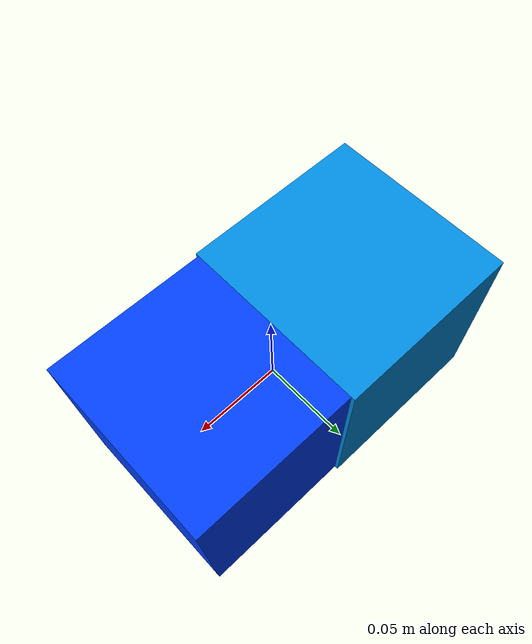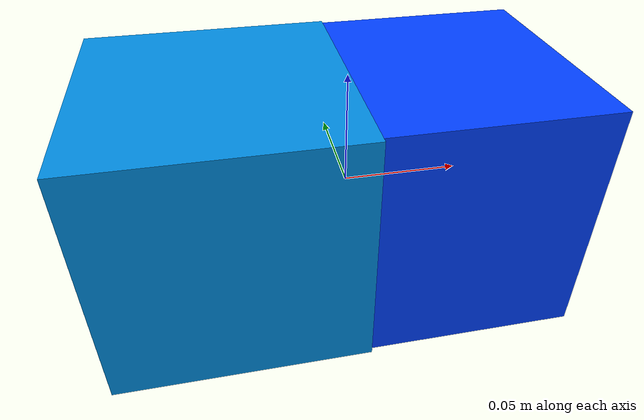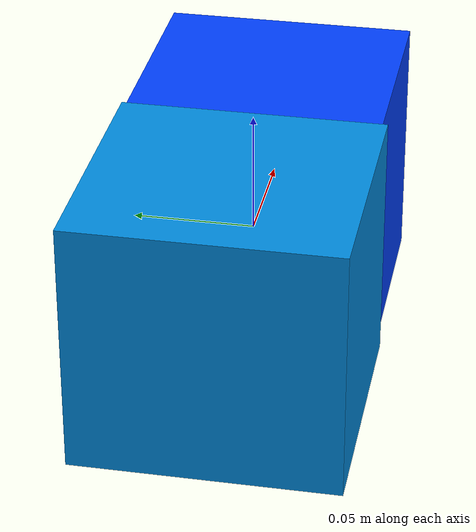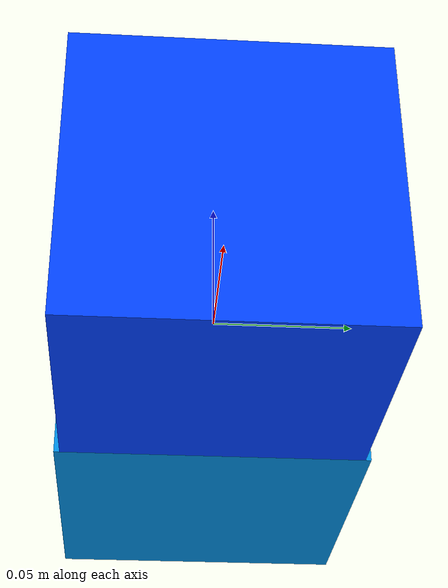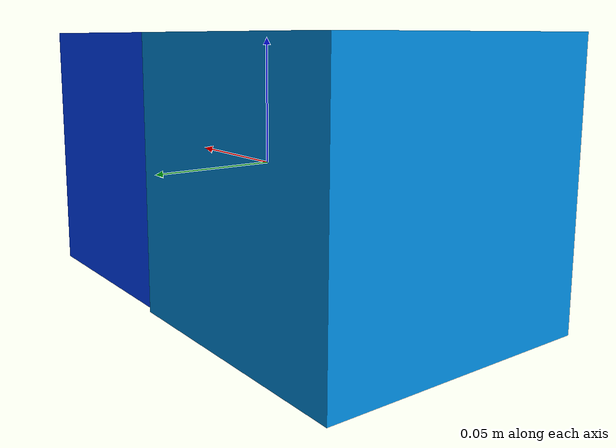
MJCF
<mujoco model="MuJoCo Model">
  <compiler angle="radian"/>

  <worldbody>
    <body name="hinge">
      <body name="stator" pos="-0.05275 0 0">
        <geom name="stator" size="0.05275 0.054 0.052" type="box" mass="0.04158" rgba="0 0.55 0.88 1"/>
      </body>
      <body name="rotor">
        <joint name="servo" pos="0 0 0" axis="0 0 1"/>
        <geom name="rotor" size="0.0447355 0.0519948 0.0519948" pos="0.0447355 0 0" type="box" mass="0.03882" rgba="0 0.25 1 1"/>
        <site name="front" pos="0.0447355 0 0"/>
      </body>
    </body>
  </worldbody>

  <contact>
    <exclude body1="stator" body2="rotor"/>
  </contact>

  <actuator>
    <general name="servo" joint="servo" dynprm="0 0 0 0 0 0 0 0 0 0" biastype="affine" biasprm="0 -1 -1"/>
  </actuator>
</mujoco>
